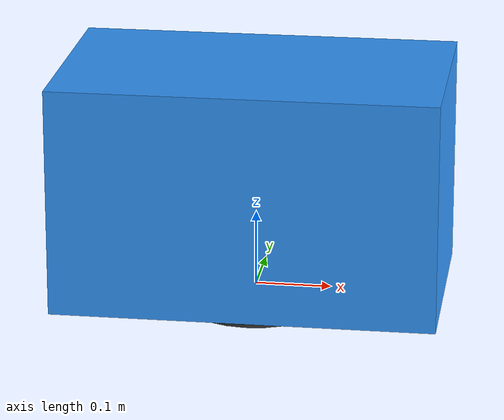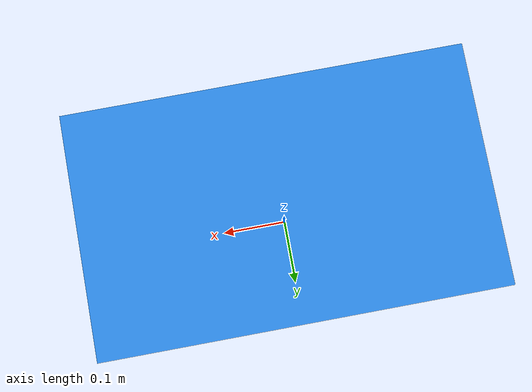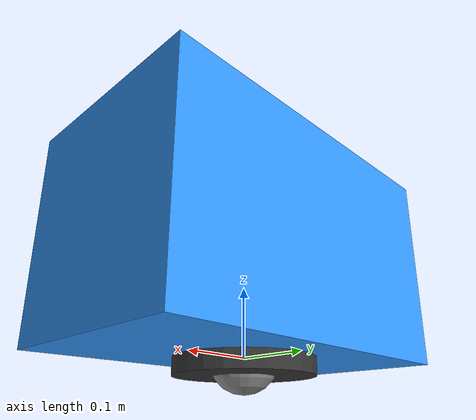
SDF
<?xml version="1.0" ?>
<sdf version="1.7">
  <model name="simple_robot">
    <!-- Base link -->
    <link name="chassis">
      <pose>0 0 0.15 0 0 0</pose>
      <inertial>
        <mass>5.0</mass>
        <inertia>
          <ixx>0.1</ixx>
          <ixy>0</ixy>
          <ixz>0</ixz>
          <iyy>0.1</iyy>
          <iyz>0</iyz>
          <izz>0.2</izz>
        </inertia>
      </inertial>

      <collision name="collision">
        <geometry>
          <box>
            <size>0.5 0.3 0.3</size>
          </box>
        </geometry>
      </collision>

      <visual name="visual">
        <geometry>
          <box>
            <size>0.5 0.3 0.3</size>
          </box>
        </geometry>
        <material>
          <ambient>0.2 0.6 1.0 1</ambient>
          <diffuse>0.2 0.6 1.0 1</diffuse>
        </material>
      </visual>
    </link>

    <!-- Left wheel -->
    <link name="left_wheel">
      <inertial>
        <mass>0.5</mass>
        <inertia>
          <ixx>0.001</ixx>
          <ixy>0</ixy>
          <ixz>0</ixz>
          <iyy>0.001</iyy>
          <iyz>0</iyz>
          <izz>0.002</izz>
        </inertia>
      </inertial>

      <collision name="collision">
        <geometry>
          <cylinder>
            <radius>0.1</radius>
            <length>0.05</length>
          </cylinder>
        </geometry>
      </collision>

      <visual name="visual">
        <geometry>
          <cylinder>
            <radius>0.1</radius>
            <length>0.05</length>
          </cylinder>
        </geometry>
        <material>
          <ambient>0.2 0.2 0.2 1</ambient>
          <diffuse>0.2 0.2 0.2 1</diffuse>
        </material>
      </visual>
    </link>

    <!-- Right wheel -->
    <link name="right_wheel">
      <inertial>
        <mass>0.5</mass>
        <inertia>
          <ixx>0.001</ixx>
          <ixy>0</ixy>
          <ixz>0</ixz>
          <iyy>0.001</iyy>
          <iyz>0</iyz>
          <izz>0.002</izz>
        </inertia>
      </inertial>

      <collision name="collision">
        <geometry>
          <cylinder>
            <radius>0.1</radius>
            <length>0.05</length>
          </cylinder>
        </geometry>
      </collision>

      <visual name="visual">
        <geometry>
          <cylinder>
            <radius>0.1</radius>
            <length>0.05</length>
          </cylinder>
        </geometry>
        <material>
          <ambient>0.2 0.2 0.2 1</ambient>
          <diffuse>0.2 0.2 0.2 1</diffuse>
        </material>
      </visual>
    </link>

    <!-- Caster wheel -->
    <link name="caster_wheel">
      <inertial>
        <mass>0.1</mass>
        <inertia>
          <ixx>0.0001</ixx>
          <ixy>0</ixy>
          <ixz>0</ixz>
          <iyy>0.0001</iyy>
          <iyz>0</iyz>
          <izz>0.0001</izz>
        </inertia>
      </inertial>

      <collision name="collision">
        <geometry>
          <sphere>
            <radius>0.05</radius>
          </sphere>
        </geometry>
      </collision>

      <visual name="visual">
        <geometry>
          <sphere>
            <radius>0.05</radius>
          </sphere>
        </geometry>
        <material>
          <ambient>0.5 0.5 0.5 1</ambient>
          <diffuse>0.5 0.5 0.5 1</diffuse>
        </material>
      </visual>
    </link>

    <!-- Camera -->
    <link name="camera">
      <inertial>
        <mass>0.01</mass>
        <inertia>
          <ixx>0.0001</ixx>
          <ixy>0</ixy>
          <ixz>0</ixz>
          <iyy>0.0001</iyy>
          <iyz>0</iyz>
          <izz>0.0001</izz>
        </inertia>
      </inertial>

      <visual name="visual">
        <geometry>
          <box>
            <size>0.05 0.05 0.03</size>
          </box>
        </geometry>
        <material>
          <ambient>0.1 0.1 0.1 1</ambient>
          <diffuse>0.1 0.1 0.1 1</diffuse>
        </material>
      </visual>
    </link>

    <!-- Joints -->
    <joint name="left_wheel_joint" type="revolute">
      <parent>chassis</parent>
      <child>left_wheel</child>
      <pose>0.15 0.2 -0.1 0 0 0</pose>
      <axis>
        <xyz>0 1 0</xyz>
        <limit>
          <effort>100</effort>
          <velocity>100</velocity>
        </limit>
      </axis>
    </joint>

    <joint name="right_wheel_joint" type="revolute">
      <parent>chassis</parent>
      <child>right_wheel</child>
      <pose>0.15 -0.2 -0.1 0 0 0</pose>
      <axis>
        <xyz>0 1 0</xyz>
        <limit>
          <effort>100</effort>
          <velocity>100</velocity>
        </limit>
      </axis>
    </joint>

    <joint name="caster_joint" type="fixed">
      <parent>chassis</parent>
      <child>caster_wheel</child>
      <pose>-0.2 0.0 -0.05 0 0 0</pose>
    </joint>

    <joint name="camera_joint" type="fixed">
      <parent>chassis</parent>
      <child>camera</child>
      <pose>0.2 0.0 0.1 0 0 0</pose>
    </joint>

    <!-- Gazebo plugins -->
    <gazebo reference="chassis">
      <material>Gazebo/Blue</material>
    </gazebo>

    <gazebo reference="left_wheel">
      <material>Gazebo/Black</material>
    </gazebo>

    <gazebo reference="right_wheel">
      <material>Gazebo/Black</material>
    </gazebo>

    <gazebo reference="caster_wheel">
      <material>Gazebo/Grey</material>
    </gazebo>

    <gazebo reference="camera">
      <material>Gazebo/Black</material>
    </gazebo>

    <!-- Differential drive plugin -->
    <gazebo>
      <plugin name="diff_drive" filename="libgazebo_ros_diff_drive.so">
        <left_joint>left_wheel_joint</left_joint>
        <right_joint>right_wheel_joint</right_joint>
        <wheel_separation>0.4</wheel_separation>
        <wheel_diameter>0.2</wheel_diameter>
        <max_wheel_torque>20</max_wheel_torque>
        <max_wheel_acceleration>1.0</max_wheel_acceleration>
        <command_topic>cmd_vel</command_topic>
        <odometry_topic>odom</odometry_topic>
        <odometry_frame>odom</odometry_frame>
        <robot_base_frame>chassis</robot_base_frame>
        <publish_odom>true</publish_odom>
        <publish_odom_tf>true</publish_odom_tf>
        <publish_wheel_tf>true</publish_wheel_tf>
      </plugin>
    </gazebo>

    <!-- Camera sensor plugin -->
    <gazebo reference="camera">
      <sensor type="camera" name="camera">
        <update_rate>30.0</update_rate>
        <camera name="head">
          <horizontal_fov>1.047</horizontal_fov>
          <image>
            <width>640</width>
            <height>480</height>
            <format>R8G8B8</format>
          </image>
          <clip>
            <near>0.02</near>
            <far>300</far>
          </clip>
        </camera>
        <plugin name="camera_controller" filename="libgazebo_ros_camera.so">
          <alwaysOn>true</alwaysOn>
          <updateRate>0.0</updateRate>
          <cameraName>simple_camera</cameraName>
          <imageTopicName>image_raw</imageTopicName>
          <cameraInfoTopicName>camera_info</cameraInfoTopicName>
          <frameName>camera</frameName>
        </plugin>
      </sensor>
    </gazebo>
  </model>
</sdf>
